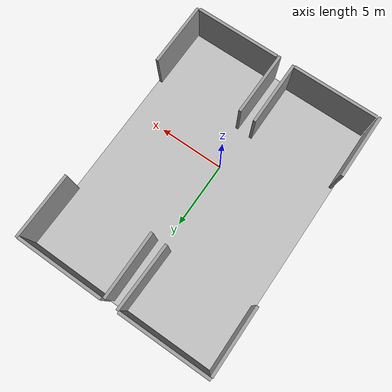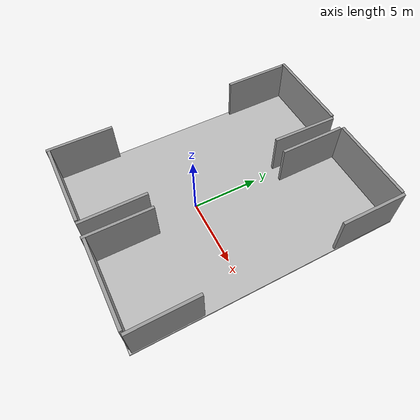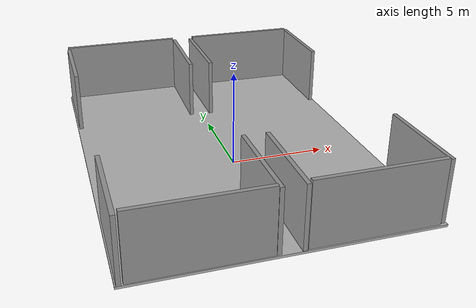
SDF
<sdf version="1.6">
 <world name="default">
  <gravity>0 0 -9.8</gravity>
  <physics name="default_physics" default="0" type="ode">
   <max_step_size>0.001</max_step_size>
   <real_time_factor>1</real_time_factor>
   <real_time_update_rate>1000</real_time_update_rate>
  </physics>
  <model name="warehouse_floor">
   <pose>0.06584 1.86956 -0.200832 0 -0 0</pose>
   <static>1</static>
   <link name="body">
    <inertial>
     <mass>1000</mass>
     <inertia>
      <ixx>1.20008e+06</ixx>
      <ixy>0</ixy>
      <ixz>0</ixz>
      <iyy>8.33342e+06</iyy>
      <iyz>0</iyz>
      <izz>2.03333e+06</izz>
     </inertia>
    </inertial>
    <collision name="collision">
     <geometry>
      <mesh><uri>model://warehouse_floor/meshes/NEWGROUND_TEXTURED.dae</uri><scale>1 1 1</scale></mesh>
     </geometry>
     <surface>
      <friction><ode><mu>0.3</mu><mu2>0.3</mu2><fdir1>0 0 0</fdir1><slip1>0</slip1><slip2>0</slip2></ode></friction>
     </surface>
    </collision>
    <visual name="visual">
     <geometry><mesh><uri>file://warehouse_floor/meshes/NEWGROUND_TEXTURED.dae</uri></mesh></geometry>
     <meta><layer>1</layer></meta>
    </visual>
   </link>
  </model>
  <light name="Warehouse_CeilingLight_003" type="point">
   <pose>0 0 9 0 -0 0</pose>
   <diffuse>0.5 0.5 0.5 1</diffuse>
   <specular>0.2 0.2 0.2 1</specular>
   <attenuation>
    <range>80</range>
    <constant>0.3</constant>
    <linear>0.01</linear>
    <quadratic>0.001</quadratic>
   </attenuation>
   <direction>0.1 0.1 -1</direction>
  </light>
  <magnetic_field>6e-06 2.3e-05 -4.2e-05</magnetic_field>
  <atmosphere type="adiabatic"/>
  <scene><ambient>0.4 0.4 0.4 1</ambient><background>0.7 0.7 0.7 1</background><shadows>1</shadows></scene>
  <spherical_coordinates>
   <surface_model>EARTH_WGS84</surface_model>
   <latitude_deg>0</latitude_deg>
   <longitude_deg>0</longitude_deg>
   <elevation>0</elevation>
   <heading_deg>0</heading_deg>
  </spherical_coordinates>
  <model name="unit_box_clone_0">
   <pose>7.47646 9.43575 1.51231 1e-06 -1.2e-05 -0.010058</pose>
   <link name="link">
    <inertial>
     <mass>1</mass>
     <inertia>
      <ixx>0.166667</ixx>
      <ixy>0</ixy>
      <ixz>0</ixz>
      <iyy>0.166667</iyy>
      <iyz>0</iyz>
      <izz>0.166667</izz>
     </inertia>
    </inertial>
    <collision name="collision"><geometry><box><size>0.213935 4.96581 3.30629</size></box></geometry></collision>
    <visual name="visual">
     <geometry><box><size>0.213935 4.96581 3.30629</size></box></geometry>
     <material>
      <script><name>Gazebo/Grey</name><uri>file://media/materials/scripts/gazebo.material</uri></script>
     </material>
    </visual>
   </link>
  </model>
  <model name="unit_box_clone_1">
   <pose>7.45138 -5.53845 1.51231 -1e-06 -0 0.001351</pose>
   <link name="link">
    <inertial>
     <mass>1</mass>
     <inertia>
      <ixx>0.166667</ixx>
      <ixy>0</ixy>
      <ixz>0</ixz>
      <iyy>0.166667</iyy>
      <iyz>0</iyz>
      <izz>0.166667</izz>
     </inertia>
    </inertial>
    <collision name="collision"><geometry><box><size>0.213935 4.96581 3.30629</size></box></geometry></collision>
    <visual name="visual">
     <geometry><box><size>0.213935 4.96581 3.30629</size></box></geometry>
     <material>
      <script><name>Gazebo/Grey</name><uri>file://media/materials/scripts/gazebo.material</uri></script>
     </material>
    </visual>
   </link>
  </model>
  <model name="unit_box_clone_2">
   <pose>0.648386 -5.68009 1.51232 1e-06 -1.7e-05 -0.004901</pose>
   <link name="link">
    <inertial>
     <mass>1</mass>
     <inertia>
      <ixx>0.166667</ixx>
      <ixy>0</ixy>
      <ixz>0</ixz>
      <iyy>0.166667</iyy>
      <iyz>0</iyz>
      <izz>0.166667</izz>
     </inertia>
    </inertial>
    <collision name="collision"><geometry><box><size>0.213935 4.96581 3.30629</size></box></geometry></collision>
    <visual name="visual">
     <geometry><box><size>0.213935 4.96581 3.30629</size></box></geometry>
     <material>
      <script><name>Gazebo/Grey</name><uri>file://media/materials/scripts/gazebo.material</uri></script>
     </material>
    </visual>
   </link>
  </model>
  <model name="unit_box_clone_3">
   <pose>-0.528775 -5.62545 1.51231 1e-06 -1e-06 0.004395</pose>
   <link name="link">
    <inertial>
     <mass>1</mass>
     <inertia>
      <ixx>0.166667</ixx>
      <ixy>0</ixy>
      <ixz>0</ixz>
      <iyy>0.166667</iyy>
      <iyz>0</iyz>
      <izz>0.166667</izz>
     </inertia>
    </inertial>
    <collision name="collision"><geometry><box><size>0.213935 4.96581 3.30629</size></box></geometry></collision>
    <visual name="visual">
     <geometry><box><size>0.213935 4.96581 3.30629</size></box></geometry>
     <material>
      <script><name>Gazebo/Grey</name><uri>file://media/materials/scripts/gazebo.material</uri></script>
     </material>
    </visual>
   </link>
  </model>
  <model name="unit_box_clone_4">
   <pose>-7.31245 -5.69753 1.51232 0 -2.3e-05 -0.00265</pose>
   <link name="link">
    <inertial>
     <mass>1</mass>
     <inertia>
      <ixx>0.166667</ixx>
      <ixy>0</ixy>
      <ixz>0</ixz>
      <iyy>0.166667</iyy>
      <iyz>0</iyz>
      <izz>0.166667</izz>
     </inertia>
    </inertial>
    <collision name="collision"><geometry><box><size>0.213935 4.96581 3.30629</size></box></geometry></collision>
    <visual name="visual">
     <geometry><box><size>0.213935 4.96581 3.30629</size></box></geometry>
     <material>
      <script><name>Gazebo/Grey</name><uri>file://media/materials/scripts/gazebo.material</uri></script>
     </material>
    </visual>
   </link>
  </model>
  <model name="unit_box_clone_0_clone">
   <pose>-7.30015 9.25799 1.51231 0 -0 0.001969</pose>
   <link name="link">
    <inertial>
     <mass>1</mass>
     <inertia>
      <ixx>0.166667</ixx>
      <ixy>0</ixy>
      <ixz>0</ixz>
      <iyy>0.166667</iyy>
      <iyz>0</iyz>
      <izz>0.166667</izz>
     </inertia>
    </inertial>
    <collision name="collision"><geometry><box><size>0.213935 4.96581 3.30629</size></box></geometry></collision>
    <visual name="visual">
     <geometry><box><size>0.213935 4.96581 3.30629</size></box></geometry>
     <material>
      <script><name>Gazebo/Grey</name><uri>file://media/materials/scripts/gazebo.material</uri></script>
     </material>
    </visual>
   </link>
  </model>
  <model name="unit_box_clone_0_clone_clone">
   <pose>-0.481726 9.38209 1.5123 0 -1e-06 -0.022417</pose>
   <link name="link">
    <inertial>
     <mass>1</mass>
     <inertia>
      <ixx>0.166667</ixx>
      <ixy>0</ixy>
      <ixz>0</ixz>
      <iyy>0.166667</iyy>
      <iyz>0</iyz>
      <izz>0.166667</izz>
     </inertia>
    </inertial>
    <collision name="collision"><geometry><box><size>0.213935 4.96581 3.30629</size></box></geometry></collision>
    <visual name="visual">
     <geometry><box><size>0.213935 4.96581 3.30629</size></box></geometry>
     <material>
      <script><name>Gazebo/Grey</name><uri>file://media/materials/scripts/gazebo.material</uri></script>
     </material>
    </visual>
   </link>
  </model>
  <model name="unit_box_clone_0_clone_clone_0">
   <pose>0.660473 9.27628 1.5123 -1e-06 -1e-06 0.000518</pose>
   <link name="link">
    <inertial>
     <mass>1</mass>
     <inertia>
      <ixx>0.166667</ixx>
      <ixy>0</ixy>
      <ixz>0</ixz>
      <iyy>0.166667</iyy>
      <iyz>0</iyz>
      <izz>0.166667</izz>
     </inertia>
    </inertial>
    <collision name="collision"><geometry><box><size>0.213935 4.96581 3.30629</size></box></geometry></collision>
    <visual name="visual">
     <geometry><box><size>0.213935 4.96581 3.30629</size></box></geometry>
     <material>
      <script><name>Gazebo/Grey</name><uri>file://media/materials/scripts/gazebo.material</uri></script>
     </material>
    </visual>
   </link>
  </model>
  <model name="unit_box">
   <pose>-3.93782 11.8709 1.55863 -3.7e-05 1e-06 0.004326</pose>
   <link name="link">
    <inertial>
     <mass>1</mass>
     <inertia>
      <ixx>0.166667</ixx>
      <ixy>0</ixy>
      <ixz>0</ixz>
      <iyy>0.166667</iyy>
      <iyz>0</iyz>
      <izz>0.166667</izz>
     </inertia>
    </inertial>
    <collision name="collision"><geometry><box><size>6.80455 0.223352 3.39892</size></box></geometry></collision>
    <visual name="visual">
     <geometry><box><size>6.80455 0.223352 3.39892</size></box></geometry>
     <material>
      <script><name>Gazebo/Grey</name><uri>file://media/materials/scripts/gazebo.material</uri></script>
     </material>
    </visual>
   </link>
  </model>
  <model name="unit_box_clone">
   <pose>4.0904 11.8482 1.55863 0 0 -0.003</pose>
   <link name="link">
    <inertial>
     <mass>1</mass>
     <inertia>
      <ixx>0.166667</ixx>
      <ixy>0</ixy>
      <ixz>0</ixz>
      <iyy>0.166667</iyy>
      <iyz>0</iyz>
      <izz>0.166667</izz>
     </inertia>
    </inertial>
    <collision name="collision"><geometry><box><size>6.58552 0.223353 3.39892</size></box></geometry></collision>
    <visual name="visual">
     <geometry><box><size>6.58552 0.223353 3.39892</size></box></geometry>
     <material>
      <script><name>Gazebo/Grey</name><uri>file://media/materials/scripts/gazebo.material</uri></script>
     </material>
    </visual>
   </link>
  </model>
  <model name="unit_box_clone_clone">
   <pose>4.0399 -7.99452 1.55865 -0.000147 -1e-06 0.000811</pose>
   <link name="link">
    <inertial>
     <mass>1</mass>
     <inertia>
      <ixx>0.166667</ixx>
      <ixy>0</ixy>
      <ixz>0</ixz>
      <iyy>0.166667</iyy>
      <iyz>0</iyz>
      <izz>0.166667</izz>
     </inertia>
    </inertial>
    <collision name="collision"><geometry><box><size>6.4817 0.223353 3.39892</size></box></geometry></collision>
    <visual name="visual">
     <geometry><box><size>6.4817 0.223353 3.39892</size></box></geometry>
     <material>
      <script><name>Gazebo/Grey</name><uri>file://media/materials/scripts/gazebo.material</uri></script>
     </material>
    </visual>
   </link>
  </model>
  <model name="unit_box_clone_clone_clone">
   <pose>-3.88376 -8.01321 1.55863 4.4e-05 -0 0.000491</pose>
   <link name="link">
    <inertial>
     <mass>1</mass>
     <inertia>
      <ixx>0.166667</ixx>
      <ixy>0</ixy>
      <ixz>0</ixz>
      <iyy>0.166667</iyy>
      <iyz>0</iyz>
      <izz>0.166667</izz>
     </inertia>
    </inertial>
    <collision name="collision"><geometry><box><size>6.4817 0.223353 3.39892</size></box></geometry></collision>
    <visual name="visual">
     <geometry><box><size>6.4817 0.223353 3.39892</size></box></geometry>
     <material>
      <script><name>Gazebo/Grey</name><uri>file://media/materials/scripts/gazebo.material</uri></script>
     </material>
    </visual>
   </link>
  </model>
 </world>
</sdf>
